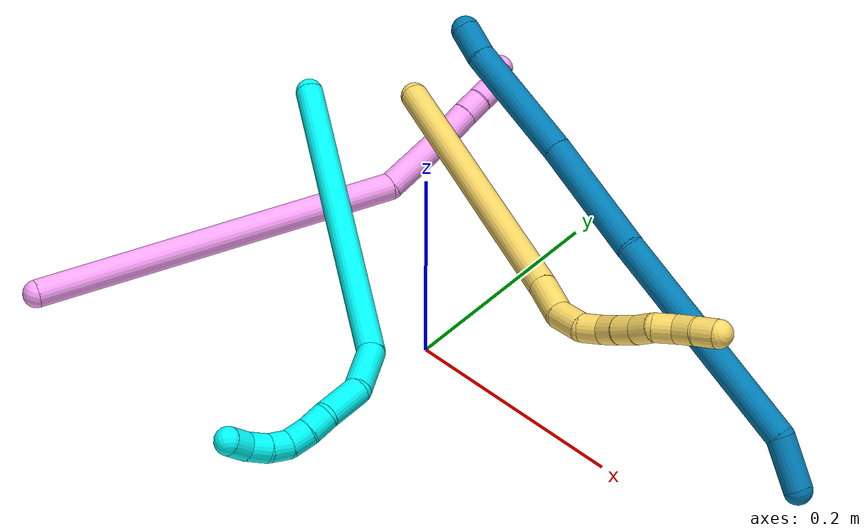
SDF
<sdf version="1.7">
 <world name="default">
  <model name="3">
   <static>0</static>
   <link name="3">
    <collision name="collision-cylinder-e_1_1_4">
     <pose>0.011739 0.01119 -0.150633 -3.06744 0.077564 -1.61584</pose>
     <geometry><cylinder><radius>0.0125</radius><length>0.303007</length></cylinder></geometry>
     <surface>
      <friction><ode><mu>1.16</mu><mu2>1.16</mu2><slip1>0</slip1><slip2>0</slip2></ode></friction>
      <contact><ode><kp>1e+06</kp><kd>1</kd><max_vel>0</max_vel><min_depth>0.001</min_depth></ode></contact>
     </surface>
    </collision>
    <visual name="visual-cylinder-e_1_1_4">
     <pose>0.011739 0.01119 -0.150633 -3.06744 0.077564 -1.61584</pose>
     <geometry><cylinder><radius>0.0125</radius><length>0.303007</length></cylinder></geometry>
     <material><ambient>0.003922 1 0.996078 1</ambient></material>
    </visual>
    <collision name="collision-cylinder-e_2_4_5">
     <pose>0.033082 0.014104 -0.324903 2.80481 0.366167 1.65609</pose>
     <geometry><cylinder><radius>0.0125</radius><length>0.053644</length></cylinder></geometry>
     <surface>
      <friction><ode><mu>1.16</mu><mu2>1.16</mu2><slip1>0</slip1><slip2>0</slip2></ode></friction>
      <contact><ode><kp>1e+06</kp><kd>1</kd><max_vel>0</max_vel><min_depth>0.001</min_depth></ode></contact>
     </surface>
    </collision>
    <visual name="visual-cylinder-e_2_4_5">
     <pose>0.033082 0.014104 -0.324903 2.80481 0.366167 1.65609</pose>
     <geometry><cylinder><radius>0.0125</radius><length>0.053644</length></cylinder></geometry>
     <material><ambient>0.003922 1 0.996078 1</ambient></material>
    </visual>
    <collision name="collision-cylinder-e_3_5_6">
     <pose>0.048427 -0.008697 -0.362071 2.32078 0.281568 0.629753</pose>
     <geometry><cylinder><radius>0.0125</radius><length>0.041329</length></cylinder></geometry>
     <surface>
      <friction><ode><mu>1.16</mu><mu2>1.16</mu2><slip1>0</slip1><slip2>0</slip2></ode></friction>
      <contact><ode><kp>1e+06</kp><kd>1</kd><max_vel>0</max_vel><min_depth>0.001</min_depth></ode></contact>
     </surface>
    </collision>
    <visual name="visual-cylinder-e_3_5_6">
     <pose>0.048427 -0.008697 -0.362071 2.32078 0.281568 0.629753</pose>
     <geometry><cylinder><radius>0.0125</radius><length>0.041329</length></cylinder></geometry>
     <material><ambient>0.003922 1 0.996078 1</ambient></material>
    </visual>
    <collision name="collision-cylinder-e_4_6_7">
     <pose>0.053766 -0.031496 -0.381951 2.22533 -0.038683 -0.078415</pose>
     <geometry><cylinder><radius>0.0125</radius><length>0.020875</length></cylinder></geometry>
     <surface>
      <friction><ode><mu>1.16</mu><mu2>1.16</mu2><slip1>0</slip1><slip2>0</slip2></ode></friction>
      <contact><ode><kp>1e+06</kp><kd>1</kd><max_vel>0</max_vel><min_depth>0.001</min_depth></ode></contact>
     </surface>
    </collision>
    <visual name="visual-cylinder-e_4_6_7">
     <pose>0.053766 -0.031496 -0.381951 2.22533 -0.038683 -0.078415</pose>
     <geometry><cylinder><radius>0.0125</radius><length>0.020875</length></cylinder></geometry>
     <material><ambient>0.003922 1 0.996078 1</ambient></material>
    </visual>
    <collision name="collision-cylinder-e_5_7_8">
     <pose>0.053074 -0.048707 -0.39322 2.07396 -0.028212 -0.047726</pose>
     <geometry><cylinder><radius>0.0125</radius><length>0.02041</length></cylinder></geometry>
     <surface>
      <friction><ode><mu>1.16</mu><mu2>1.16</mu2><slip1>0</slip1><slip2>0</slip2></ode></friction>
      <contact><ode><kp>1e+06</kp><kd>1</kd><max_vel>0</max_vel><min_depth>0.001</min_depth></ode></contact>
     </surface>
    </collision>
    <visual name="visual-cylinder-e_5_7_8">
     <pose>0.053074 -0.048707 -0.39322 2.07396 -0.028212 -0.047726</pose>
     <geometry><cylinder><radius>0.0125</radius><length>0.02041</length></cylinder></geometry>
     <material><ambient>0.003922 1 0.996078 1</ambient></material>
    </visual>
    <collision name="collision-cylinder-e_6_8_9">
     <pose>0.056823 -0.066386 -0.40104 1.89123 0.413033 0.565011</pose>
     <geometry><cylinder><radius>0.0125</radius><length>0.020115</length></cylinder></geometry>
     <surface>
      <friction><ode><mu>1.16</mu><mu2>1.16</mu2><slip1>0</slip1><slip2>0</slip2></ode></friction>
      <contact><ode><kp>1e+06</kp><kd>1</kd><max_vel>0</max_vel><min_depth>0.001</min_depth></ode></contact>
     </surface>
    </collision>
    <visual name="visual-cylinder-e_6_8_9">
     <pose>0.056823 -0.066386 -0.40104 1.89123 0.413033 0.565011</pose>
     <geometry><cylinder><radius>0.0125</radius><length>0.020115</length></cylinder></geometry>
     <material><ambient>0.003922 1 0.996078 1</ambient></material>
    </visual>
    <collision name="collision-cylinder-e_7_9_10">
     <pose>0.065545 -0.083964 -0.404245 1.60509 0.487304 0.503608</pose>
     <geometry><cylinder><radius>0.0125</radius><length>0.020009</length></cylinder></geometry>
     <surface>
      <friction><ode><mu>1.16</mu><mu2>1.16</mu2><slip1>0</slip1><slip2>0</slip2></ode></friction>
      <contact><ode><kp>1e+06</kp><kd>1</kd><max_vel>0</max_vel><min_depth>0.001</min_depth></ode></contact>
     </surface>
    </collision>
    <visual name="visual-cylinder-e_7_9_10">
     <pose>0.065545 -0.083964 -0.404245 1.60509 0.487304 0.503608</pose>
     <geometry><cylinder><radius>0.0125</radius><length>0.020009</length></cylinder></geometry>
     <material><ambient>0.003922 1 0.996078 1</ambient></material>
    </visual>
    <collision name="collision-cylinder-e_8_10_2">
     <pose>0.07806 -0.099422 -0.405552 1.7212 0.863106 0.98336</pose>
     <geometry><cylinder><radius>0.0125</radius><length>0.02061</length></cylinder></geometry>
     <surface>
      <friction><ode><mu>1.16</mu><mu2>1.16</mu2><slip1>0</slip1><slip2>0</slip2></ode></friction>
      <contact><ode><kp>1e+06</kp><kd>1</kd><max_vel>0</max_vel><min_depth>0.001</min_depth></ode></contact>
     </surface>
    </collision>
    <visual name="visual-cylinder-e_8_10_2">
     <pose>0.07806 -0.099422 -0.405552 1.7212 0.863106 0.98336</pose>
     <geometry><cylinder><radius>0.0125</radius><length>0.02061</length></cylinder></geometry>
     <material><ambient>0.003922 1 0.996078 1</ambient></material>
    </visual>
    <collision name="collision-sphere-2">
     <pose>0.085891 -0.106046 -0.406555 0 -0 0</pose>
     <geometry><sphere><radius>0.0125</radius></sphere></geometry>
     <surface>
      <friction><ode><mu>1.16</mu><mu2>1.16</mu2><slip1>0</slip1><slip2>0</slip2></ode></friction>
      <contact><ode><kp>1e+06</kp><kd>1</kd><max_vel>0</max_vel><min_depth>0.001</min_depth></ode></contact>
     </surface>
    </collision>
    <visual name="visual-sphere-2">
     <pose>0.085891 -0.106046 -0.406555 0 -0 0</pose>
     <geometry><sphere><radius>0.0125</radius></sphere></geometry>
     <material><ambient>0.003922 1 0.996078 1</ambient></material>
    </visual>
    <collision name="collision-sphere-10">
     <pose>0.07023 -0.092799 -0.404548 0 -0 0</pose>
     <geometry><sphere><radius>0.0125</radius></sphere></geometry>
     <surface>
      <friction><ode><mu>1.16</mu><mu2>1.16</mu2><slip1>0</slip1><slip2>0</slip2></ode></friction>
      <contact><ode><kp>1e+06</kp><kd>1</kd><max_vel>0</max_vel><min_depth>0.001</min_depth></ode></contact>
     </surface>
    </collision>
    <visual name="visual-sphere-10">
     <pose>0.07023 -0.092799 -0.404548 0 -0 0</pose>
     <geometry><sphere><radius>0.0125</radius></sphere></geometry>
     <material><ambient>0.003922 1 0.996078 1</ambient></material>
    </visual>
    <collision name="collision-sphere-9">
     <pose>0.06086 -0.075129 -0.403942 0 -0 0</pose>
     <geometry><sphere><radius>0.0125</radius></sphere></geometry>
     <surface>
      <friction><ode><mu>1.16</mu><mu2>1.16</mu2><slip1>0</slip1><slip2>0</slip2></ode></friction>
      <contact><ode><kp>1e+06</kp><kd>1</kd><max_vel>0</max_vel><min_depth>0.001</min_depth></ode></contact>
     </surface>
    </collision>
    <visual name="visual-sphere-9">
     <pose>0.06086 -0.075129 -0.403942 0 -0 0</pose>
     <geometry><sphere><radius>0.0125</radius></sphere></geometry>
     <material><ambient>0.003922 1 0.996078 1</ambient></material>
    </visual>
    <collision name="collision-sphere-4">
     <pose>0.023479 0.02238 -0.301266 0 -0 0</pose>
     <geometry><sphere><radius>0.0125</radius></sphere></geometry>
     <surface>
      <friction><ode><mu>1.16</mu><mu2>1.16</mu2><slip1>0</slip1><slip2>0</slip2></ode></friction>
      <contact><ode><kp>1e+06</kp><kd>1</kd><max_vel>0</max_vel><min_depth>0.001</min_depth></ode></contact>
     </surface>
    </collision>
    <visual name="visual-sphere-4">
     <pose>0.023479 0.02238 -0.301266 0 -0 0</pose>
     <geometry><sphere><radius>0.0125</radius></sphere></geometry>
     <material><ambient>0.003922 1 0.996078 1</ambient></material>
    </visual>
    <collision name="collision-sphere-1">
     <geometry><sphere><radius>0.0125</radius></sphere></geometry>
     <surface>
      <friction><ode><mu>1.16</mu><mu2>1.16</mu2><slip1>0</slip1><slip2>0</slip2></ode></friction>
      <contact><ode><kp>1e+06</kp><kd>1</kd><max_vel>0</max_vel><min_depth>0.001</min_depth></ode></contact>
     </surface>
    </collision>
    <visual name="visual-sphere-1">
     <geometry><sphere><radius>0.0125</radius></sphere></geometry>
     <material><ambient>0.003922 1 0.996078 1</ambient></material>
    </visual>
    <collision name="collision-sphere-8">
     <pose>0.052786 -0.057643 -0.398139 0 -0 0</pose>
     <geometry><sphere><radius>0.0125</radius></sphere></geometry>
     <surface>
      <friction><ode><mu>1.16</mu><mu2>1.16</mu2><slip1>0</slip1><slip2>0</slip2></ode></friction>
      <contact><ode><kp>1e+06</kp><kd>1</kd><max_vel>0</max_vel><min_depth>0.001</min_depth></ode></contact>
     </surface>
    </collision>
    <visual name="visual-sphere-8">
     <pose>0.052786 -0.057643 -0.398139 0 -0 0</pose>
     <geometry><sphere><radius>0.0125</radius></sphere></geometry>
     <material><ambient>0.003922 1 0.996078 1</ambient></material>
    </visual>
    <collision name="collision-sphere-5">
     <pose>0.042686 0.005828 -0.34854 0 -0 0</pose>
     <geometry><sphere><radius>0.0125</radius></sphere></geometry>
     <surface>
      <friction><ode><mu>1.16</mu><mu2>1.16</mu2><slip1>0</slip1><slip2>0</slip2></ode></friction>
      <contact><ode><kp>1e+06</kp><kd>1</kd><max_vel>0</max_vel><min_depth>0.001</min_depth></ode></contact>
     </surface>
    </collision>
    <visual name="visual-sphere-5">
     <pose>0.042686 0.005828 -0.34854 0 -0 0</pose>
     <geometry><sphere><radius>0.0125</radius></sphere></geometry>
     <material><ambient>0.003922 1 0.996078 1</ambient></material>
    </visual>
    <collision name="collision-sphere-6">
     <pose>0.054169 -0.023222 -0.375602 0 -0 0</pose>
     <geometry><sphere><radius>0.0125</radius></sphere></geometry>
     <surface>
      <friction><ode><mu>1.16</mu><mu2>1.16</mu2><slip1>0</slip1><slip2>0</slip2></ode></friction>
      <contact><ode><kp>1e+06</kp><kd>1</kd><max_vel>0</max_vel><min_depth>0.001</min_depth></ode></contact>
     </surface>
    </collision>
    <visual name="visual-sphere-6">
     <pose>0.054169 -0.023222 -0.375602 0 -0 0</pose>
     <geometry><sphere><radius>0.0125</radius></sphere></geometry>
     <material><ambient>0.003922 1 0.996078 1</ambient></material>
    </visual>
    <collision name="collision-sphere-7">
     <pose>0.053362 -0.03977 -0.388301 0 -0 0</pose>
     <geometry><sphere><radius>0.0125</radius></sphere></geometry>
     <surface>
      <friction><ode><mu>1.16</mu><mu2>1.16</mu2><slip1>0</slip1><slip2>0</slip2></ode></friction>
      <contact><ode><kp>1e+06</kp><kd>1</kd><max_vel>0</max_vel><min_depth>0.001</min_depth></ode></contact>
     </surface>
    </collision>
    <visual name="visual-sphere-7">
     <pose>0.053362 -0.03977 -0.388301 0 -0 0</pose>
     <geometry><sphere><radius>0.0125</radius></sphere></geometry>
     <material><ambient>0.003922 1 0.996078 1</ambient></material>
    </visual>
    <inertial>
     <pose>0.027204 -0.005857 -0.237098 0 -0 0</pose>
     <mass>0.5</mass>
     <inertia>
      <ixx>-0.002388</ixx>
      <ixy>0</ixy>
      <ixz>0</ixz>
      <iyy>-0.002192</iyy>
      <iyz>0</iyz>
      <izz>-0.000378</izz>
     </inertia>
    </inertial>
   </link>
   <pose>-0.268435 0.133783 0.049957 0.325672 -1.34844 -1.02838</pose>
  </model>
  <model name="4">
   <static>0</static>
   <link name="4">
    <collision name="collision-cylinder-e_1_1_4">
     <pose>0.045262 0.116419 -0.060204 -2.04806 0.33252 -0.538033</pose>
     <geometry><cylinder><radius>0.0125</radius><length>0.27732</length></cylinder></geometry>
     <surface>
      <friction><ode><mu>1.16</mu><mu2>1.16</mu2><slip1>0</slip1><slip2>0</slip2></ode></friction>
      <contact><ode><kp>1e+06</kp><kd>1</kd><max_vel>0</max_vel><min_depth>0.001</min_depth></ode></contact>
     </surface>
    </collision>
    <visual name="visual-cylinder-e_1_1_4">
     <pose>0.045262 0.116419 -0.060204 -2.04806 0.33252 -0.538033</pose>
     <geometry><cylinder><radius>0.0125</radius><length>0.27732</length></cylinder></geometry>
     <material><ambient>1 0.65098 0.996078 1</ambient></material>
    </visual>
    <collision name="collision-cylinder-e_2_4_5">
     <pose>0.100718 0.25888 -0.133915 -2.04923 0.334422 -0.5417</pose>
     <geometry><cylinder><radius>0.0125</radius><length>0.062113</length></cylinder></geometry>
     <surface>
      <friction><ode><mu>1.16</mu><mu2>1.16</mu2><slip1>0</slip1><slip2>0</slip2></ode></friction>
      <contact><ode><kp>1e+06</kp><kd>1</kd><max_vel>0</max_vel><min_depth>0.001</min_depth></ode></contact>
     </surface>
    </collision>
    <visual name="visual-cylinder-e_2_4_5">
     <pose>0.100718 0.25888 -0.133915 -2.04923 0.334422 -0.5417</pose>
     <geometry><cylinder><radius>0.0125</radius><length>0.062113</length></cylinder></geometry>
     <material><ambient>1 0.65098 0.996078 1</ambient></material>
    </visual>
    <collision name="collision-cylinder-e_3_5_6">
     <pose>0.124242 0.301066 -0.168582 -2.48987 0.464323 -1.22101</pose>
     <geometry><cylinder><radius>0.0125</radius><length>0.059535</length></cylinder></geometry>
     <surface>
      <friction><ode><mu>1.16</mu><mu2>1.16</mu2><slip1>0</slip1><slip2>0</slip2></ode></friction>
      <contact><ode><kp>1e+06</kp><kd>1</kd><max_vel>0</max_vel><min_depth>0.001</min_depth></ode></contact>
     </surface>
    </collision>
    <visual name="visual-cylinder-e_3_5_6">
     <pose>0.124242 0.301066 -0.168582 -2.48987 0.464323 -1.22101</pose>
     <geometry><cylinder><radius>0.0125</radius><length>0.059535</length></cylinder></geometry>
     <material><ambient>1 0.65098 0.996078 1</ambient></material>
    </visual>
    <collision name="collision-cylinder-e_4_6_7">
     <pose>0.14668 0.32719 -0.204922 -2.55999 0.464738 -1.33808</pose>
     <geometry><cylinder><radius>0.0125</radius><length>0.040642</length></cylinder></geometry>
     <surface>
      <friction><ode><mu>1.16</mu><mu2>1.16</mu2><slip1>0</slip1><slip2>0</slip2></ode></friction>
      <contact><ode><kp>1e+06</kp><kd>1</kd><max_vel>0</max_vel><min_depth>0.001</min_depth></ode></contact>
     </surface>
    </collision>
    <visual name="visual-cylinder-e_4_6_7">
     <pose>0.14668 0.32719 -0.204922 -2.55999 0.464738 -1.33808</pose>
     <geometry><cylinder><radius>0.0125</radius><length>0.040642</length></cylinder></geometry>
     <material><ambient>1 0.65098 0.996078 1</ambient></material>
    </visual>
    <collision name="collision-cylinder-e_5_7_8">
     <pose>0.160362 0.34236 -0.227388 -2.52268 0.472621 -1.29105</pose>
     <geometry><cylinder><radius>0.0125</radius><length>0.020097</length></cylinder></geometry>
     <surface>
      <friction><ode><mu>1.16</mu><mu2>1.16</mu2><slip1>0</slip1><slip2>0</slip2></ode></friction>
      <contact><ode><kp>1e+06</kp><kd>1</kd><max_vel>0</max_vel><min_depth>0.001</min_depth></ode></contact>
     </surface>
    </collision>
    <visual name="visual-cylinder-e_5_7_8">
     <pose>0.160362 0.34236 -0.227388 -2.52268 0.472621 -1.29105</pose>
     <geometry><cylinder><radius>0.0125</radius><length>0.020097</length></cylinder></geometry>
     <material><ambient>1 0.65098 0.996078 1</ambient></material>
    </visual>
    <collision name="collision-cylinder-e_6_8_9">
     <pose>0.170363 0.352703 -0.24144 -2.49069 0.568036 -1.42633</pose>
     <geometry><cylinder><radius>0.0125</radius><length>0.020174</length></cylinder></geometry>
     <surface>
      <friction><ode><mu>1.16</mu><mu2>1.16</mu2><slip1>0</slip1><slip2>0</slip2></ode></friction>
      <contact><ode><kp>1e+06</kp><kd>1</kd><max_vel>0</max_vel><min_depth>0.001</min_depth></ode></contact>
     </surface>
    </collision>
    <visual name="visual-cylinder-e_6_8_9">
     <pose>0.170363 0.352703 -0.24144 -2.49069 0.568036 -1.42633</pose>
     <geometry><cylinder><radius>0.0125</radius><length>0.020174</length></cylinder></geometry>
     <material><ambient>1 0.65098 0.996078 1</ambient></material>
    </visual>
    <collision name="collision-cylinder-e_7_9_2">
     <pose>0.182421 0.35896 -0.255686 -2.99492 0.719888 -2.756</pose>
     <geometry><cylinder><radius>0.0125</radius><length>0.020118</length></cylinder></geometry>
     <surface>
      <friction><ode><mu>1.16</mu><mu2>1.16</mu2><slip1>0</slip1><slip2>0</slip2></ode></friction>
      <contact><ode><kp>1e+06</kp><kd>1</kd><max_vel>0</max_vel><min_depth>0.001</min_depth></ode></contact>
     </surface>
    </collision>
    <visual name="visual-cylinder-e_7_9_2">
     <pose>0.182421 0.35896 -0.255686 -2.99492 0.719888 -2.756</pose>
     <geometry><cylinder><radius>0.0125</radius><length>0.020118</length></cylinder></geometry>
     <material><ambient>1 0.65098 0.996078 1</ambient></material>
    </visual>
    <collision name="collision-sphere-2">
     <pose>0.189053 0.360066 -0.263168 0 -0 0</pose>
     <geometry><sphere><radius>0.0125</radius></sphere></geometry>
     <surface>
      <friction><ode><mu>1.16</mu><mu2>1.16</mu2><slip1>0</slip1><slip2>0</slip2></ode></friction>
      <contact><ode><kp>1e+06</kp><kd>1</kd><max_vel>0</max_vel><min_depth>0.001</min_depth></ode></contact>
     </surface>
    </collision>
    <visual name="visual-sphere-2">
     <pose>0.189053 0.360066 -0.263168 0 -0 0</pose>
     <geometry><sphere><radius>0.0125</radius></sphere></geometry>
     <material><ambient>1 0.65098 0.996078 1</ambient></material>
    </visual>
    <collision name="collision-sphere-9">
     <pose>0.175789 0.357855 -0.248204 0 -0 0</pose>
     <geometry><sphere><radius>0.0125</radius></sphere></geometry>
     <surface>
      <friction><ode><mu>1.16</mu><mu2>1.16</mu2><slip1>0</slip1><slip2>0</slip2></ode></friction>
      <contact><ode><kp>1e+06</kp><kd>1</kd><max_vel>0</max_vel><min_depth>0.001</min_depth></ode></contact>
     </surface>
    </collision>
    <visual name="visual-sphere-9">
     <pose>0.175789 0.357855 -0.248204 0 -0 0</pose>
     <geometry><sphere><radius>0.0125</radius></sphere></geometry>
     <material><ambient>1 0.65098 0.996078 1</ambient></material>
    </visual>
    <collision name="collision-sphere-4">
     <pose>0.090524 0.232838 -0.120409 0 -0 0</pose>
     <geometry><sphere><radius>0.0125</radius></sphere></geometry>
     <surface>
      <friction><ode><mu>1.16</mu><mu2>1.16</mu2><slip1>0</slip1><slip2>0</slip2></ode></friction>
      <contact><ode><kp>1e+06</kp><kd>1</kd><max_vel>0</max_vel><min_depth>0.001</min_depth></ode></contact>
     </surface>
    </collision>
    <visual name="visual-sphere-4">
     <pose>0.090524 0.232838 -0.120409 0 -0 0</pose>
     <geometry><sphere><radius>0.0125</radius></sphere></geometry>
     <material><ambient>1 0.65098 0.996078 1</ambient></material>
    </visual>
    <collision name="collision-sphere-1">
     <geometry><sphere><radius>0.0125</radius></sphere></geometry>
     <surface>
      <friction><ode><mu>1.16</mu><mu2>1.16</mu2><slip1>0</slip1><slip2>0</slip2></ode></friction>
      <contact><ode><kp>1e+06</kp><kd>1</kd><max_vel>0</max_vel><min_depth>0.001</min_depth></ode></contact>
     </surface>
    </collision>
    <visual name="visual-sphere-1">
     <geometry><sphere><radius>0.0125</radius></sphere></geometry>
     <material><ambient>1 0.65098 0.996078 1</ambient></material>
    </visual>
    <collision name="collision-sphere-8">
     <pose>0.164936 0.347551 -0.234675 0 -0 0</pose>
     <geometry><sphere><radius>0.0125</radius></sphere></geometry>
     <surface>
      <friction><ode><mu>1.16</mu><mu2>1.16</mu2><slip1>0</slip1><slip2>0</slip2></ode></friction>
      <contact><ode><kp>1e+06</kp><kd>1</kd><max_vel>0</max_vel><min_depth>0.001</min_depth></ode></contact>
     </surface>
    </collision>
    <visual name="visual-sphere-8">
     <pose>0.164936 0.347551 -0.234675 0 -0 0</pose>
     <geometry><sphere><radius>0.0125</radius></sphere></geometry>
     <material><ambient>1 0.65098 0.996078 1</ambient></material>
    </visual>
    <collision name="collision-sphere-5">
     <pose>0.110911 0.284922 -0.147421 0 -0 0</pose>
     <geometry><sphere><radius>0.0125</radius></sphere></geometry>
     <surface>
      <friction><ode><mu>1.16</mu><mu2>1.16</mu2><slip1>0</slip1><slip2>0</slip2></ode></friction>
      <contact><ode><kp>1e+06</kp><kd>1</kd><max_vel>0</max_vel><min_depth>0.001</min_depth></ode></contact>
     </surface>
    </collision>
    <visual name="visual-sphere-5">
     <pose>0.110911 0.284922 -0.147421 0 -0 0</pose>
     <geometry><sphere><radius>0.0125</radius></sphere></geometry>
     <material><ambient>1 0.65098 0.996078 1</ambient></material>
    </visual>
    <collision name="collision-sphere-6">
     <pose>0.137572 0.31721 -0.189743 0 -0 0</pose>
     <geometry><sphere><radius>0.0125</radius></sphere></geometry>
     <surface>
      <friction><ode><mu>1.16</mu><mu2>1.16</mu2><slip1>0</slip1><slip2>0</slip2></ode></friction>
      <contact><ode><kp>1e+06</kp><kd>1</kd><max_vel>0</max_vel><min_depth>0.001</min_depth></ode></contact>
     </surface>
    </collision>
    <visual name="visual-sphere-6">
     <pose>0.137572 0.31721 -0.189743 0 -0 0</pose>
     <geometry><sphere><radius>0.0125</radius></sphere></geometry>
     <material><ambient>1 0.65098 0.996078 1</ambient></material>
    </visual>
    <collision name="collision-sphere-7">
     <pose>0.155788 0.33717 -0.220101 0 -0 0</pose>
     <geometry><sphere><radius>0.0125</radius></sphere></geometry>
     <surface>
      <friction><ode><mu>1.16</mu><mu2>1.16</mu2><slip1>0</slip1><slip2>0</slip2></ode></friction>
      <contact><ode><kp>1e+06</kp><kd>1</kd><max_vel>0</max_vel><min_depth>0.001</min_depth></ode></contact>
     </surface>
    </collision>
    <visual name="visual-sphere-7">
     <pose>0.155788 0.33717 -0.220101 0 -0 0</pose>
     <geometry><sphere><radius>0.0125</radius></sphere></geometry>
     <material><ambient>1 0.65098 0.996078 1</ambient></material>
    </visual>
    <inertial>
     <pose>0.084992 0.201609 -0.115927 0 -0 0</pose>
     <mass>0.5</mass>
     <inertia>
      <ixx>0.000588</ixx>
      <ixy>0</ixy>
      <ixz>0</ixz>
      <iyy>-0.001318</iyy>
      <iyz>0</iyz>
      <izz>-0.002162</izz>
     </inertia>
    </inertial>
   </link>
   <pose>-0.289718 -0.189933 0.0115 -2.85577 0.50361 2.3537</pose>
  </model>
  <model name="5">
   <static>0</static>
   <link name="5">
    <collision name="collision-cylinder-e_1_1_4">
     <pose>0.090066 -0.036038 0.108752 0.319985 0.666233 0.111557</pose>
     <geometry><cylinder><radius>0.0125</radius><length>0.291463</length></cylinder></geometry>
     <surface>
      <friction><ode><mu>1.16</mu><mu2>1.16</mu2><slip1>0</slip1><slip2>0</slip2></ode></friction>
      <contact><ode><kp>1e+06</kp><kd>1</kd><max_vel>0</max_vel><min_depth>0.001</min_depth></ode></contact>
     </surface>
    </collision>
    <visual name="visual-cylinder-e_1_1_4">
     <pose>0.090066 -0.036038 0.108752 0.319985 0.666233 0.111557</pose>
     <geometry><cylinder><radius>0.0125</radius><length>0.291463</length></cylinder></geometry>
     <material><ambient>1 0.858824 0.4 1</ambient></material>
    </visual>
    <collision name="collision-cylinder-e_2_4_5">
     <pose>0.191962 -0.077432 0.230957 0.378981 0.68496 0.136546</pose>
     <geometry><cylinder><radius>0.0125</radius><length>0.037396</length></cylinder></geometry>
     <surface>
      <friction><ode><mu>1.16</mu><mu2>1.16</mu2><slip1>0</slip1><slip2>0</slip2></ode></friction>
      <contact><ode><kp>1e+06</kp><kd>1</kd><max_vel>0</max_vel><min_depth>0.001</min_depth></ode></contact>
     </surface>
    </collision>
    <visual name="visual-cylinder-e_2_4_5">
     <pose>0.191962 -0.077432 0.230957 0.378981 0.68496 0.136546</pose>
     <geometry><cylinder><radius>0.0125</radius><length>0.037396</length></cylinder></geometry>
     <material><ambient>1 0.858824 0.4 1</ambient></material>
    </visual>
    <collision name="collision-cylinder-e_3_5_6">
     <pose>0.210759 -0.082738 0.25765 -0.003907 0.484478 -0.000965</pose>
     <geometry><cylinder><radius>0.0125</radius><length>0.029923</length></cylinder></geometry>
     <surface>
      <friction><ode><mu>1.16</mu><mu2>1.16</mu2><slip1>0</slip1><slip2>0</slip2></ode></friction>
      <contact><ode><kp>1e+06</kp><kd>1</kd><max_vel>0</max_vel><min_depth>0.001</min_depth></ode></contact>
     </surface>
    </collision>
    <visual name="visual-cylinder-e_3_5_6">
     <pose>0.210759 -0.082738 0.25765 -0.003907 0.484478 -0.000965</pose>
     <geometry><cylinder><radius>0.0125</radius><length>0.029923</length></cylinder></geometry>
     <material><ambient>1 0.858824 0.4 1</ambient></material>
    </visual>
    <collision name="collision-cylinder-e_4_6_7">
     <pose>0.220716 -0.078377 0.279498 -0.464146 0.301046 -0.071658</pose>
     <geometry><cylinder><radius>0.0125</radius><length>0.020161</length></cylinder></geometry>
     <surface>
      <friction><ode><mu>1.16</mu><mu2>1.16</mu2><slip1>0</slip1><slip2>0</slip2></ode></friction>
      <contact><ode><kp>1e+06</kp><kd>1</kd><max_vel>0</max_vel><min_depth>0.001</min_depth></ode></contact>
     </surface>
    </collision>
    <visual name="visual-cylinder-e_4_6_7">
     <pose>0.220716 -0.078377 0.279498 -0.464146 0.301046 -0.071658</pose>
     <geometry><cylinder><radius>0.0125</radius><length>0.020161</length></cylinder></geometry>
     <material><ambient>1 0.858824 0.4 1</ambient></material>
    </visual>
    <collision name="collision-cylinder-e_5_7_8">
     <pose>0.224796 -0.07329 0.298275 -0.076287 0.106532 -0.004069</pose>
     <geometry><cylinder><radius>0.0125</radius><length>0.020512</length></cylinder></geometry>
     <surface>
      <friction><ode><mu>1.16</mu><mu2>1.16</mu2><slip1>0</slip1><slip2>0</slip2></ode></friction>
      <contact><ode><kp>1e+06</kp><kd>1</kd><max_vel>0</max_vel><min_depth>0.001</min_depth></ode></contact>
     </surface>
    </collision>
    <visual name="visual-cylinder-e_5_7_8">
     <pose>0.224796 -0.07329 0.298275 -0.076287 0.106532 -0.004069</pose>
     <geometry><cylinder><radius>0.0125</radius><length>0.020512</length></cylinder></geometry>
     <material><ambient>1 0.858824 0.4 1</ambient></material>
    </visual>
    <collision name="collision-cylinder-e_6_8_9">
     <pose>0.227071 -0.07088 0.318492 -0.161097 0.115808 -0.009359</pose>
     <geometry><cylinder><radius>0.0125</radius><length>0.020498</length></cylinder></geometry>
     <surface>
      <friction><ode><mu>1.16</mu><mu2>1.16</mu2><slip1>0</slip1><slip2>0</slip2></ode></friction>
      <contact><ode><kp>1e+06</kp><kd>1</kd><max_vel>0</max_vel><min_depth>0.001</min_depth></ode></contact>
     </surface>
    </collision>
    <visual name="visual-cylinder-e_6_8_9">
     <pose>0.227071 -0.07088 0.318492 -0.161097 0.115808 -0.009359</pose>
     <geometry><cylinder><radius>0.0125</radius><length>0.020498</length></cylinder></geometry>
     <material><ambient>1 0.858824 0.4 1</ambient></material>
    </visual>
    <collision name="collision-cylinder-e_7_9_10">
     <pose>0.228457 -0.067771 0.338436 -0.148023 0.020225 -0.0015</pose>
     <geometry><cylinder><radius>0.0125</radius><length>0.020013</length></cylinder></geometry>
     <surface>
      <friction><ode><mu>1.16</mu><mu2>1.16</mu2><slip1>0</slip1><slip2>0</slip2></ode></friction>
      <contact><ode><kp>1e+06</kp><kd>1</kd><max_vel>0</max_vel><min_depth>0.001</min_depth></ode></contact>
     </surface>
    </collision>
    <visual name="visual-cylinder-e_7_9_10">
     <pose>0.228457 -0.067771 0.338436 -0.148023 0.020225 -0.0015</pose>
     <geometry><cylinder><radius>0.0125</radius><length>0.020013</length></cylinder></geometry>
     <material><ambient>1 0.858824 0.4 1</ambient></material>
    </visual>
    <collision name="collision-cylinder-e_8_10_11">
     <pose>0.231651 -0.060987 0.356261 -0.58995 0.303798 -0.092955</pose>
     <geometry><cylinder><radius>0.0125</radius><length>0.020002</length></cylinder></geometry>
     <surface>
      <friction><ode><mu>1.16</mu><mu2>1.16</mu2><slip1>0</slip1><slip2>0</slip2></ode></friction>
      <contact><ode><kp>1e+06</kp><kd>1</kd><max_vel>0</max_vel><min_depth>0.001</min_depth></ode></contact>
     </surface>
    </collision>
    <visual name="visual-cylinder-e_8_10_11">
     <pose>0.231651 -0.060987 0.356261 -0.58995 0.303798 -0.092955</pose>
     <geometry><cylinder><radius>0.0125</radius><length>0.020002</length></cylinder></geometry>
     <material><ambient>1 0.858824 0.4 1</ambient></material>
    </visual>
    <collision name="collision-cylinder-e_9_11_12">
     <pose>0.236877 -0.053727 0.373741 -0.20153 0.22526 -0.022871</pose>
     <geometry><cylinder><radius>0.0125</radius><length>0.02</length></cylinder></geometry>
     <surface>
      <friction><ode><mu>1.16</mu><mu2>1.16</mu2><slip1>0</slip1><slip2>0</slip2></ode></friction>
      <contact><ode><kp>1e+06</kp><kd>1</kd><max_vel>0</max_vel><min_depth>0.001</min_depth></ode></contact>
     </surface>
    </collision>
    <visual name="visual-cylinder-e_9_11_12">
     <pose>0.236877 -0.053727 0.373741 -0.20153 0.22526 -0.022871</pose>
     <geometry><cylinder><radius>0.0125</radius><length>0.02</length></cylinder></geometry>
     <material><ambient>1 0.858824 0.4 1</ambient></material>
    </visual>
    <collision name="collision-cylinder-e_10_12_2">
     <pose>0.242044 -0.048409 0.392256 -0.359219 0.297302 -0.054368</pose>
     <geometry><cylinder><radius>0.0125</radius><length>0.020032</length></cylinder></geometry>
     <surface>
      <friction><ode><mu>1.16</mu><mu2>1.16</mu2><slip1>0</slip1><slip2>0</slip2></ode></friction>
      <contact><ode><kp>1e+06</kp><kd>1</kd><max_vel>0</max_vel><min_depth>0.001</min_depth></ode></contact>
     </surface>
    </collision>
    <visual name="visual-cylinder-e_10_12_2">
     <pose>0.242044 -0.048409 0.392256 -0.359219 0.297302 -0.054368</pose>
     <geometry><cylinder><radius>0.0125</radius><length>0.020032</length></cylinder></geometry>
     <material><ambient>1 0.858824 0.4 1</ambient></material>
    </visual>
    <collision name="collision-sphere-2">
     <pose>0.244978 -0.045043 0.401221 0 -0 0</pose>
     <geometry><sphere><radius>0.0125</radius></sphere></geometry>
     <surface>
      <friction><ode><mu>1.16</mu><mu2>1.16</mu2><slip1>0</slip1><slip2>0</slip2></ode></friction>
      <contact><ode><kp>1e+06</kp><kd>1</kd><max_vel>0</max_vel><min_depth>0.001</min_depth></ode></contact>
     </surface>
    </collision>
    <visual name="visual-sphere-2">
     <pose>0.244978 -0.045043 0.401221 0 -0 0</pose>
     <geometry><sphere><radius>0.0125</radius></sphere></geometry>
     <material><ambient>1 0.858824 0.4 1</ambient></material>
    </visual>
    <collision name="collision-sphere-12">
     <pose>0.23911 -0.051776 0.383291 0 -0 0</pose>
     <geometry><sphere><radius>0.0125</radius></sphere></geometry>
     <surface>
      <friction><ode><mu>1.16</mu><mu2>1.16</mu2><slip1>0</slip1><slip2>0</slip2></ode></friction>
      <contact><ode><kp>1e+06</kp><kd>1</kd><max_vel>0</max_vel><min_depth>0.001</min_depth></ode></contact>
     </surface>
    </collision>
    <visual name="visual-sphere-12">
     <pose>0.23911 -0.051776 0.383291 0 -0 0</pose>
     <geometry><sphere><radius>0.0125</radius></sphere></geometry>
     <material><ambient>1 0.858824 0.4 1</ambient></material>
    </visual>
    <collision name="collision-sphere-11">
     <pose>0.234643 -0.055678 0.364191 0 -0 0</pose>
     <geometry><sphere><radius>0.0125</radius></sphere></geometry>
     <surface>
      <friction><ode><mu>1.16</mu><mu2>1.16</mu2><slip1>0</slip1><slip2>0</slip2></ode></friction>
      <contact><ode><kp>1e+06</kp><kd>1</kd><max_vel>0</max_vel><min_depth>0.001</min_depth></ode></contact>
     </surface>
    </collision>
    <visual name="visual-sphere-11">
     <pose>0.234643 -0.055678 0.364191 0 -0 0</pose>
     <geometry><sphere><radius>0.0125</radius></sphere></geometry>
     <material><ambient>1 0.858824 0.4 1</ambient></material>
    </visual>
    <collision name="collision-sphere-10">
     <pose>0.22866 -0.066296 0.348331 0 -0 0</pose>
     <geometry><sphere><radius>0.0125</radius></sphere></geometry>
     <surface>
      <friction><ode><mu>1.16</mu><mu2>1.16</mu2><slip1>0</slip1><slip2>0</slip2></ode></friction>
      <contact><ode><kp>1e+06</kp><kd>1</kd><max_vel>0</max_vel><min_depth>0.001</min_depth></ode></contact>
     </surface>
    </collision>
    <visual name="visual-sphere-10">
     <pose>0.22866 -0.066296 0.348331 0 -0 0</pose>
     <geometry><sphere><radius>0.0125</radius></sphere></geometry>
     <material><ambient>1 0.858824 0.4 1</ambient></material>
    </visual>
    <collision name="collision-sphere-9">
     <pose>0.228255 -0.069247 0.32854 0 -0 0</pose>
     <geometry><sphere><radius>0.0125</radius></sphere></geometry>
     <surface>
      <friction><ode><mu>1.16</mu><mu2>1.16</mu2><slip1>0</slip1><slip2>0</slip2></ode></friction>
      <contact><ode><kp>1e+06</kp><kd>1</kd><max_vel>0</max_vel><min_depth>0.001</min_depth></ode></contact>
     </surface>
    </collision>
    <visual name="visual-sphere-9">
     <pose>0.228255 -0.069247 0.32854 0 -0 0</pose>
     <geometry><sphere><radius>0.0125</radius></sphere></geometry>
     <material><ambient>1 0.858824 0.4 1</ambient></material>
    </visual>
    <collision name="collision-sphere-4">
     <pose>0.180133 -0.072075 0.217504 0 -0 0</pose>
     <geometry><sphere><radius>0.0125</radius></sphere></geometry>
     <surface>
      <friction><ode><mu>1.16</mu><mu2>1.16</mu2><slip1>0</slip1><slip2>0</slip2></ode></friction>
      <contact><ode><kp>1e+06</kp><kd>1</kd><max_vel>0</max_vel><min_depth>0.001</min_depth></ode></contact>
     </surface>
    </collision>
    <visual name="visual-sphere-4">
     <pose>0.180133 -0.072075 0.217504 0 -0 0</pose>
     <geometry><sphere><radius>0.0125</radius></sphere></geometry>
     <material><ambient>1 0.858824 0.4 1</ambient></material>
    </visual>
    <collision name="collision-sphere-1">
     <geometry><sphere><radius>0.0125</radius></sphere></geometry>
     <surface>
      <friction><ode><mu>1.16</mu><mu2>1.16</mu2><slip1>0</slip1><slip2>0</slip2></ode></friction>
      <contact><ode><kp>1e+06</kp><kd>1</kd><max_vel>0</max_vel><min_depth>0.001</min_depth></ode></contact>
     </surface>
    </collision>
    <visual name="visual-sphere-1">
     <geometry><sphere><radius>0.0125</radius></sphere></geometry>
     <material><ambient>1 0.858824 0.4 1</ambient></material>
    </visual>
    <collision name="collision-sphere-8">
     <pose>0.225886 -0.072513 0.308443 0 -0 0</pose>
     <geometry><sphere><radius>0.0125</radius></sphere></geometry>
     <surface>
      <friction><ode><mu>1.16</mu><mu2>1.16</mu2><slip1>0</slip1><slip2>0</slip2></ode></friction>
      <contact><ode><kp>1e+06</kp><kd>1</kd><max_vel>0</max_vel><min_depth>0.001</min_depth></ode></contact>
     </surface>
    </collision>
    <visual name="visual-sphere-8">
     <pose>0.225886 -0.072513 0.308443 0 -0 0</pose>
     <geometry><sphere><radius>0.0125</radius></sphere></geometry>
     <material><ambient>1 0.858824 0.4 1</ambient></material>
    </visual>
    <collision name="collision-sphere-5">
     <pose>0.203791 -0.08279 0.24441 0 -0 0</pose>
     <geometry><sphere><radius>0.0125</radius></sphere></geometry>
     <surface>
      <friction><ode><mu>1.16</mu><mu2>1.16</mu2><slip1>0</slip1><slip2>0</slip2></ode></friction>
      <contact><ode><kp>1e+06</kp><kd>1</kd><max_vel>0</max_vel><min_depth>0.001</min_depth></ode></contact>
     </surface>
    </collision>
    <visual name="visual-sphere-5">
     <pose>0.203791 -0.08279 0.24441 0 -0 0</pose>
     <geometry><sphere><radius>0.0125</radius></sphere></geometry>
     <material><ambient>1 0.858824 0.4 1</ambient></material>
    </visual>
    <collision name="collision-sphere-6">
     <pose>0.217727 -0.082686 0.270889 0 -0 0</pose>
     <geometry><sphere><radius>0.0125</radius></sphere></geometry>
     <surface>
      <friction><ode><mu>1.16</mu><mu2>1.16</mu2><slip1>0</slip1><slip2>0</slip2></ode></friction>
      <contact><ode><kp>1e+06</kp><kd>1</kd><max_vel>0</max_vel><min_depth>0.001</min_depth></ode></contact>
     </surface>
    </collision>
    <visual name="visual-sphere-6">
     <pose>0.217727 -0.082686 0.270889 0 -0 0</pose>
     <geometry><sphere><radius>0.0125</radius></sphere></geometry>
     <material><ambient>1 0.858824 0.4 1</ambient></material>
    </visual>
    <collision name="collision-sphere-7">
     <pose>0.223705 -0.074067 0.288106 0 -0 0</pose>
     <geometry><sphere><radius>0.0125</radius></sphere></geometry>
     <surface>
      <friction><ode><mu>1.16</mu><mu2>1.16</mu2><slip1>0</slip1><slip2>0</slip2></ode></friction>
      <contact><ode><kp>1e+06</kp><kd>1</kd><max_vel>0</max_vel><min_depth>0.001</min_depth></ode></contact>
     </surface>
    </collision>
    <visual name="visual-sphere-7">
     <pose>0.223705 -0.074067 0.288106 0 -0 0</pose>
     <geometry><sphere><radius>0.0125</radius></sphere></geometry>
     <material><ambient>1 0.858824 0.4 1</ambient></material>
    </visual>
    <inertial>
     <pose>0.144487 -0.050064 0.191114 0 -0 0</pose>
     <mass>0.5</mass>
     <inertia>
      <ixx>0.001839</ixx>
      <ixy>0</ixy>
      <ixz>0</ixz>
      <iyy>0.002199</iyy>
      <iyz>0</iyz>
      <izz>-0.000746</izz>
     </inertia>
    </inertial>
   </link>
   <pose>-0.195874 0.197547 0.04765 -0.230778 0.828996 -0.366381</pose>
  </model>
  <model name="9">
   <static>0</static>
   <link name="9">
    <collision name="collision-cylinder-e_1_1_4">
     <pose>0.012706 -0.004164 -0.006034 2.53754 1.04744 2.15213</pose>
     <geometry><cylinder><radius>0.0125</radius><length>0.029339</length></cylinder></geometry>
     <surface>
      <friction><ode><mu>1.16</mu><mu2>1.16</mu2><slip1>0</slip1><slip2>0</slip2></ode></friction>
      <contact><ode><kp>1e+06</kp><kd>1</kd><max_vel>0</max_vel><min_depth>0.001</min_depth></ode></contact>
     </surface>
    </collision>
    <visual name="visual-cylinder-e_1_1_4">
     <pose>0.012706 -0.004164 -0.006034 2.53754 1.04744 2.15213</pose>
     <geometry><cylinder><radius>0.0125</radius><length>0.029339</length></cylinder></geometry>
     <material><ambient>0 0.490196 0.709804 1</ambient></material>
    </visual>
    <collision name="collision-cylinder-e_2_4_5">
     <pose>0.075088 -0.016011 -0.034911 2.81716 1.1191 2.63043</pose>
     <geometry><cylinder><radius>0.0125</radius><length>0.110426</length></cylinder></geometry>
     <surface>
      <friction><ode><mu>1.16</mu><mu2>1.16</mu2><slip1>0</slip1><slip2>0</slip2></ode></friction>
      <contact><ode><kp>1e+06</kp><kd>1</kd><max_vel>0</max_vel><min_depth>0.001</min_depth></ode></contact>
     </surface>
    </collision>
    <visual name="visual-cylinder-e_2_4_5">
     <pose>0.075088 -0.016011 -0.034911 2.81716 1.1191 2.63043</pose>
     <geometry><cylinder><radius>0.0125</radius><length>0.110426</length></cylinder></geometry>
     <material><ambient>0 0.490196 0.709804 1</ambient></material>
    </visual>
    <collision name="collision-cylinder-e_3_5_6">
     <pose>0.175442 -0.035574 -0.078117 2.61344 1.13539 2.33956</pose>
     <geometry><cylinder><radius>0.0125</radius><length>0.111787</length></cylinder></geometry>
     <surface>
      <friction><ode><mu>1.16</mu><mu2>1.16</mu2><slip1>0</slip1><slip2>0</slip2></ode></friction>
      <contact><ode><kp>1e+06</kp><kd>1</kd><max_vel>0</max_vel><min_depth>0.001</min_depth></ode></contact>
     </surface>
    </collision>
    <visual name="visual-cylinder-e_3_5_6">
     <pose>0.175442 -0.035574 -0.078117 2.61344 1.13539 2.33956</pose>
     <geometry><cylinder><radius>0.0125</radius><length>0.111787</length></cylinder></geometry>
     <material><ambient>0 0.490196 0.709804 1</ambient></material>
    </visual>
    <collision name="collision-cylinder-e_4_6_7">
     <pose>0.313263 -0.057059 -0.149247 2.9546 1.03559 2.8153</pose>
     <geometry><cylinder><radius>0.0125</radius><length>0.202617</length></cylinder></geometry>
     <surface>
      <friction><ode><mu>1.16</mu><mu2>1.16</mu2><slip1>0</slip1><slip2>0</slip2></ode></friction>
      <contact><ode><kp>1e+06</kp><kd>1</kd><max_vel>0</max_vel><min_depth>0.001</min_depth></ode></contact>
     </surface>
    </collision>
    <visual name="visual-cylinder-e_4_6_7">
     <pose>0.313263 -0.057059 -0.149247 2.9546 1.03559 2.8153</pose>
     <geometry><cylinder><radius>0.0125</radius><length>0.202617</length></cylinder></geometry>
     <material><ambient>0 0.490196 0.709804 1</ambient></material>
    </visual>
    <collision name="collision-cylinder-e_5_7_2">
     <pose>0.414026 -0.072757 -0.217406 2.80461 0.636539 2.1884</pose>
     <geometry><cylinder><radius>0.0125</radius><length>0.04583</length></cylinder></geometry>
     <surface>
      <friction><ode><mu>1.16</mu><mu2>1.16</mu2><slip1>0</slip1><slip2>0</slip2></ode></friction>
      <contact><ode><kp>1e+06</kp><kd>1</kd><max_vel>0</max_vel><min_depth>0.001</min_depth></ode></contact>
     </surface>
    </collision>
    <visual name="visual-cylinder-e_5_7_2">
     <pose>0.414026 -0.072757 -0.217406 2.80461 0.636539 2.1884</pose>
     <geometry><cylinder><radius>0.0125</radius><length>0.04583</length></cylinder></geometry>
     <material><ambient>0 0.490196 0.709804 1</ambient></material>
    </visual>
    <collision name="collision-sphere-2">
     <pose>0.427647 -0.07885 -0.234798 0 -0 0</pose>
     <geometry><sphere><radius>0.0125</radius></sphere></geometry>
     <surface>
      <friction><ode><mu>1.16</mu><mu2>1.16</mu2><slip1>0</slip1><slip2>0</slip2></ode></friction>
      <contact><ode><kp>1e+06</kp><kd>1</kd><max_vel>0</max_vel><min_depth>0.001</min_depth></ode></contact>
     </surface>
    </collision>
    <visual name="visual-sphere-2">
     <pose>0.427647 -0.07885 -0.234798 0 -0 0</pose>
     <geometry><sphere><radius>0.0125</radius></sphere></geometry>
     <material><ambient>0 0.490196 0.709804 1</ambient></material>
    </visual>
    <collision name="collision-sphere-7">
     <pose>0.400405 -0.066664 -0.200015 0 -0 0</pose>
     <geometry><sphere><radius>0.0125</radius></sphere></geometry>
     <surface>
      <friction><ode><mu>1.16</mu><mu2>1.16</mu2><slip1>0</slip1><slip2>0</slip2></ode></friction>
      <contact><ode><kp>1e+06</kp><kd>1</kd><max_vel>0</max_vel><min_depth>0.001</min_depth></ode></contact>
     </surface>
    </collision>
    <visual name="visual-sphere-7">
     <pose>0.400405 -0.066664 -0.200015 0 -0 0</pose>
     <geometry><sphere><radius>0.0125</radius></sphere></geometry>
     <material><ambient>0 0.490196 0.709804 1</ambient></material>
    </visual>
    <collision name="collision-sphere-6">
     <pose>0.22612 -0.047454 -0.098479 0 -0 0</pose>
     <geometry><sphere><radius>0.0125</radius></sphere></geometry>
     <surface>
      <friction><ode><mu>1.16</mu><mu2>1.16</mu2><slip1>0</slip1><slip2>0</slip2></ode></friction>
      <contact><ode><kp>1e+06</kp><kd>1</kd><max_vel>0</max_vel><min_depth>0.001</min_depth></ode></contact>
     </surface>
    </collision>
    <visual name="visual-sphere-6">
     <pose>0.22612 -0.047454 -0.098479 0 -0 0</pose>
     <geometry><sphere><radius>0.0125</radius></sphere></geometry>
     <material><ambient>0 0.490196 0.709804 1</ambient></material>
    </visual>
    <collision name="collision-sphere-5">
     <pose>0.124763 -0.023694 -0.057754 0 -0 0</pose>
     <geometry><sphere><radius>0.0125</radius></sphere></geometry>
     <surface>
      <friction><ode><mu>1.16</mu><mu2>1.16</mu2><slip1>0</slip1><slip2>0</slip2></ode></friction>
      <contact><ode><kp>1e+06</kp><kd>1</kd><max_vel>0</max_vel><min_depth>0.001</min_depth></ode></contact>
     </surface>
    </collision>
    <visual name="visual-sphere-5">
     <pose>0.124763 -0.023694 -0.057754 0 -0 0</pose>
     <geometry><sphere><radius>0.0125</radius></sphere></geometry>
     <material><ambient>0 0.490196 0.709804 1</ambient></material>
    </visual>
    <collision name="collision-sphere-1">
     <geometry><sphere><radius>0.0125</radius></sphere></geometry>
     <surface>
      <friction><ode><mu>1.16</mu><mu2>1.16</mu2><slip1>0</slip1><slip2>0</slip2></ode></friction>
      <contact><ode><kp>1e+06</kp><kd>1</kd><max_vel>0</max_vel><min_depth>0.001</min_depth></ode></contact>
     </surface>
    </collision>
    <visual name="visual-sphere-1">
     <geometry><sphere><radius>0.0125</radius></sphere></geometry>
     <material><ambient>0 0.490196 0.709804 1</ambient></material>
    </visual>
    <collision name="collision-sphere-4">
     <pose>0.025412 -0.008329 -0.012069 0 -0 0</pose>
     <geometry><sphere><radius>0.0125</radius></sphere></geometry>
     <surface>
      <friction><ode><mu>1.16</mu><mu2>1.16</mu2><slip1>0</slip1><slip2>0</slip2></ode></friction>
      <contact><ode><kp>1e+06</kp><kd>1</kd><max_vel>0</max_vel><min_depth>0.001</min_depth></ode></contact>
     </surface>
    </collision>
    <visual name="visual-sphere-4">
     <pose>0.025412 -0.008329 -0.012069 0 -0 0</pose>
     <geometry><sphere><radius>0.0125</radius></sphere></geometry>
     <material><ambient>0 0.490196 0.709804 1</ambient></material>
    </visual>
    <inertial>
     <pose>0.221448 -0.041525 -0.105937 0 -0 0</pose>
     <mass>0.5</mass>
     <inertia>
      <ixx>-0.000207</ixx>
      <ixy>0</ixy>
      <ixz>0</ixz>
      <iyy>0.001101</iyy>
      <iyz>0</iyz>
      <izz>-0.000733</izz>
     </inertia>
    </inertial>
   </link>
   <pose>-0.099939 0.158449 0.207094 0.019816 -0.146174 -0.043067</pose>
  </model>
 </world>
</sdf>
